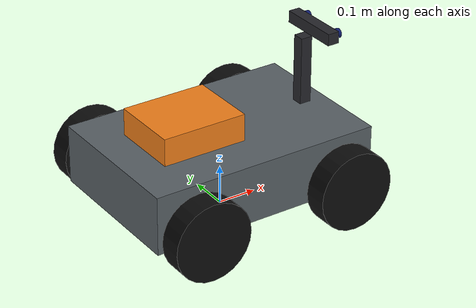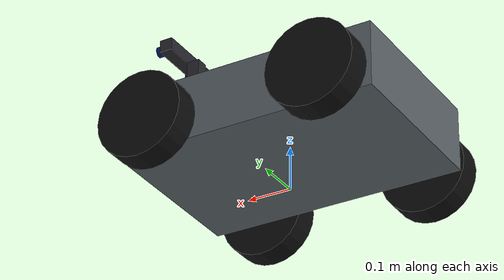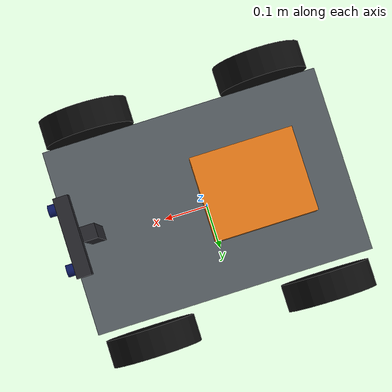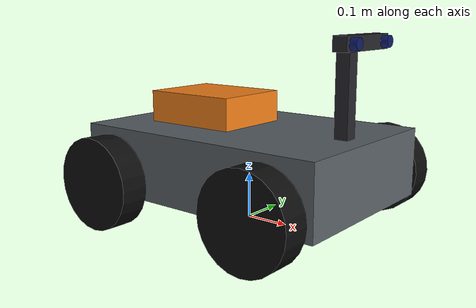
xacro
<?xml version="1.0"?>
<robot name="visionnav" xmlns:xacro="http://www.ros.org/wiki/xacro">

  <!-- ===================== CONFIGURABLE ARGUMENTS ===================== -->
  <!-- Chassis -->
  <xacro:arg name="chassis_length" default="0.60"/>
  <xacro:arg name="chassis_width" default="0.40"/>
  <xacro:arg name="chassis_height" default="0.15"/>
  <xacro:arg name="chassis_mass" default="12.0"/>
  <xacro:arg name="ground_clearance" default="0.06"/>
  <!-- Wheels -->
  <xacro:arg name="wheel_radius" default="0.10"/>
  <xacro:arg name="wheel_width" default="0.06"/>
  <xacro:arg name="wheel_mass" default="1.2"/>
  <xacro:arg name="track_width" default="0.50"/>   <!-- left-right wheel centre distance -->
  <xacro:arg name="wheel_base" default="0.40"/>    <!-- front-rear wheel centre distance -->
  <!-- Stereo camera -->
  <xacro:arg name="camera_baseline" default="0.12"/>
  <xacro:arg name="camera_x" default="0.27"/>      <!-- from base_link, forward -->
  <xacro:arg name="camera_z" default="0.30"/>      <!-- from base_link (axle height), up; must clear chassis top -->
  <xacro:arg name="camera_width" default="640"/>
  <xacro:arg name="camera_height" default="480"/>
  <xacro:arg name="camera_hfov" default="1.3963"/> <!-- 80 deg -->
  <xacro:arg name="camera_fps" default="30"/>
  <xacro:arg name="publish_odom_tf" default="true"/>

  <xacro:property name="chassis_length" value="$(arg chassis_length)"/>
  <xacro:property name="chassis_width" value="$(arg chassis_width)"/>
  <xacro:property name="chassis_height" value="$(arg chassis_height)"/>
  <xacro:property name="chassis_mass" value="$(arg chassis_mass)"/>
  <xacro:property name="ground_clearance" value="$(arg ground_clearance)"/>
  <xacro:property name="wheel_radius" value="$(arg wheel_radius)"/>
  <xacro:property name="wheel_width" value="$(arg wheel_width)"/>
  <xacro:property name="wheel_mass" value="$(arg wheel_mass)"/>
  <xacro:property name="track_width" value="$(arg track_width)"/>
  <xacro:property name="wheel_base" value="$(arg wheel_base)"/>
  <xacro:property name="camera_baseline" value="$(arg camera_baseline)"/>
  <xacro:property name="camera_x" value="$(arg camera_x)"/>
  <xacro:property name="camera_z" value="$(arg camera_z)"/>
  <xacro:property name="camera_width" value="$(arg camera_width)"/>
  <xacro:property name="camera_height" value="$(arg camera_height)"/>
  <xacro:property name="camera_hfov" value="$(arg camera_hfov)"/>
  <xacro:property name="camera_fps" value="$(arg camera_fps)"/>
  <xacro:property name="publish_odom_tf" value="$(arg publish_odom_tf)"/>

  <!-- ===================== DERIVED VALUES ===================== -->
  <!-- base_link sits at the wheel axle height; base_footprint is on the ground. -->
  <xacro:property name="chassis_z" value="${ground_clearance + chassis_height/2 - wheel_radius}"/>
  <xacro:property name="chassis_top_z" value="${chassis_z + chassis_height/2}"/>

  <!-- Electronics enclosure (compact box on top of chassis, rear half) -->
  <xacro:property name="enc_x" value="-0.10"/>
  <xacro:property name="enc_l" value="0.22"/>
  <xacro:property name="enc_w" value="0.18"/>
  <xacro:property name="enc_h" value="0.07"/>

  <!-- Sensor bracket (vertical post) + camera bar -->
  <xacro:property name="cam_bar_depth" value="0.03"/>
  <xacro:property name="cam_bar_height" value="0.03"/>
  <xacro:property name="cam_bar_width" value="${camera_baseline + 0.04}"/>
  <xacro:property name="post_size" value="0.03"/>
  <xacro:property name="post_h" value="${camera_z - cam_bar_height/2 - chassis_top_z}"/>
  <xacro:property name="post_x" value="${camera_x - cam_bar_depth/2 - post_size/2}"/>
  <xacro:property name="camera_mass" value="0.30"/>

  <xacro:property name="max_wheel_torque" value="20.0"/>
  <xacro:property name="max_wheel_speed" value="30.0"/> <!-- rad/s -->

  <!-- ===================== MATERIALS ===================== -->
  <material name="chassis_grey"><color rgba="0.35 0.38 0.40 1.0"/></material>
  <material name="enclosure_orange"><color rgba="0.95 0.50 0.10 1.0"/></material>
  <material name="bracket_dark"><color rgba="0.15 0.15 0.17 1.0"/></material>
  <material name="wheel_black"><color rgba="0.05 0.05 0.05 1.0"/></material>
  <material name="lens_blue"><color rgba="0.05 0.10 0.40 1.0"/></material>

  <!-- ===================== INERTIA MACROS ===================== -->
  <xacro:macro name="box_inertia" params="m x y z">
    <inertia ixx="${m*(y*y + z*z)/12.0}" ixy="0" ixz="0"
             iyy="${m*(x*x + z*z)/12.0}" iyz="0"
             izz="${m*(x*x + y*y)/12.0}"/>
  </xacro:macro>

  <!-- ===================== BASE ===================== -->
  <link name="base_footprint"/>

  <joint name="base_footprint_joint" type="fixed">
    <parent link="base_footprint"/>
    <child link="base_link"/>
    <origin xyz="0 0 ${wheel_radius}" rpy="0 0 0"/>
  </joint>

  <link name="base_link">
    <!-- Main chassis -->
    <visual>
      <origin xyz="0 0 ${chassis_z}" rpy="0 0 0"/>
      <geometry><box size="${chassis_length} ${chassis_width} ${chassis_height}"/></geometry>
      <material name="chassis_grey"/>
    </visual>
    <collision>
      <origin xyz="0 0 ${chassis_z}" rpy="0 0 0"/>
      <geometry><box size="${chassis_length} ${chassis_width} ${chassis_height}"/></geometry>
    </collision>

    <!-- Electronics enclosure -->
    <visual>
      <origin xyz="${enc_x} 0 ${chassis_top_z + enc_h/2}" rpy="0 0 0"/>
      <geometry><box size="${enc_l} ${enc_w} ${enc_h}"/></geometry>
      <material name="enclosure_orange"/>
    </visual>
    <collision>
      <origin xyz="${enc_x} 0 ${chassis_top_z + enc_h/2}" rpy="0 0 0"/>
      <geometry><box size="${enc_l} ${enc_w} ${enc_h}"/></geometry>
    </collision>

    <!-- Rigid sensor bracket (vertical post) -->
    <visual>
      <origin xyz="${post_x} 0 ${chassis_top_z + post_h/2}" rpy="0 0 0"/>
      <geometry><box size="${post_size} ${post_size} ${post_h}"/></geometry>
      <material name="bracket_dark"/>
    </visual>
    <collision>
      <origin xyz="${post_x} 0 ${chassis_top_z + post_h/2}" rpy="0 0 0"/>
      <geometry><box size="${post_size} ${post_size} ${post_h}"/></geometry>
    </collision>

    <!-- Lumped mass of chassis + enclosure + bracket, approximated as the chassis box -->
    <inertial>
      <origin xyz="0 0 ${chassis_z}" rpy="0 0 0"/>
      <mass value="${chassis_mass}"/>
      <xacro:box_inertia m="${chassis_mass}" x="${chassis_length}" y="${chassis_width}" z="${chassis_height}"/>
    </inertial>
  </link>

  <!-- ===================== WHEELS ===================== -->
  <xacro:macro name="wheel" params="name x y">
    <link name="${name}_wheel_link">
      <visual>
        <origin xyz="0 0 0" rpy="${pi/2} 0 0"/>
        <geometry><cylinder radius="${wheel_radius}" length="${wheel_width}"/></geometry>
        <material name="wheel_black"/>
      </visual>
      <collision>
        <origin xyz="0 0 0" rpy="${pi/2} 0 0"/>
        <geometry><cylinder radius="${wheel_radius}" length="${wheel_width}"/></geometry>
      </collision>
      <inertial>
        <origin xyz="0 0 0" rpy="0 0 0"/>
        <mass value="${wheel_mass}"/>
        <!-- Solid cylinder with its symmetry axis along Y -->
        <inertia ixx="${wheel_mass*(3*wheel_radius*wheel_radius + wheel_width*wheel_width)/12.0}" ixy="0" ixz="0"
                 iyy="${wheel_mass*wheel_radius*wheel_radius/2.0}" iyz="0"
                 izz="${wheel_mass*(3*wheel_radius*wheel_radius + wheel_width*wheel_width)/12.0}"/>
      </inertial>
    </link>

    <joint name="${name}_wheel_joint" type="continuous">
      <parent link="base_link"/>
      <child link="${name}_wheel_link"/>
      <origin xyz="${x} ${y} 0" rpy="0 0 0"/>
      <axis xyz="0 1 0"/>
      <limit effort="${max_wheel_torque}" velocity="${max_wheel_speed}"/>
      <dynamics damping="0.05" friction="0.02"/>
    </joint>

    <!-- Skid-steer contact: high grip rolling direction (mu1 along fdir1 = X),
         reduced lateral grip (mu2) so the robot can slip sideways when turning in place. -->
    <gazebo reference="${name}_wheel_link">
      <mu1>1.0</mu1>
      <mu2>0.6</mu2>
      <fdir1>1 0 0</fdir1>
      <kp>1000000.0</kp>
      <kd>100.0</kd>
      <minDepth>0.001</minDepth>
      <maxVel>0.1</maxVel>
      <material>Gazebo/Black</material>
    </gazebo>
  </xacro:macro>

  <xacro:wheel name="front_left"  x="${ wheel_base/2}" y="${ track_width/2}"/>
  <xacro:wheel name="front_right" x="${ wheel_base/2}" y="${-track_width/2}"/>
  <xacro:wheel name="rear_left"   x="${-wheel_base/2}" y="${ track_width/2}"/>
  <xacro:wheel name="rear_right"  x="${-wheel_base/2}" y="${-track_width/2}"/>

  <!-- Low-friction chassis so it never drags if it touches the ground -->
  <gazebo reference="base_link">
    <mu1>0.05</mu1>
    <mu2>0.05</mu2>
    <material>Gazebo/Grey</material>
  </gazebo>

  <!-- ===================== STEREO CAMERA ASSEMBLY ===================== -->
  <link name="stereo_camera_link">
    <visual>
      <origin xyz="0 0 0" rpy="0 0 0"/>
      <geometry><box size="${cam_bar_depth} ${cam_bar_width} ${cam_bar_height}"/></geometry>
      <material name="bracket_dark"/>
    </visual>
    <collision>
      <origin xyz="0 0 0" rpy="0 0 0"/>
      <geometry><box size="${cam_bar_depth} ${cam_bar_width} ${cam_bar_height}"/></geometry>
    </collision>
    <inertial>
      <origin xyz="0 0 0" rpy="0 0 0"/>
      <mass value="${camera_mass}"/>
      <xacro:box_inertia m="${camera_mass}" x="${cam_bar_depth}" y="${cam_bar_width}" z="${cam_bar_height}"/>
    </inertial>
  </link>

  <joint name="stereo_camera_joint" type="fixed">
    <parent link="base_link"/>
    <child link="stereo_camera_link"/>
    <origin xyz="${camera_x} 0 ${camera_z}" rpy="0 0 0"/>
  </joint>

  <!-- Camera body frame (x fwd, y left, z up) + optical frame (z fwd, x right, y down)
       Optical rotation relative to body frame: rpy = (-pi/2, 0, -pi/2). -->
  <xacro:macro name="stereo_side" params="side y_sign">
    <link name="${side}_camera_frame">
      <!-- Lens barrel (visual only) -->
      <visual>
        <origin xyz="${cam_bar_depth/2 + 0.0075} 0 0" rpy="0 ${pi/2} 0"/>
        <geometry><cylinder radius="0.012" length="0.015"/></geometry>
        <material name="lens_blue"/>
      </visual>
    </link>

    <joint name="${side}_camera_joint" type="fixed">
      <parent link="stereo_camera_link"/>
      <child link="${side}_camera_frame"/>
      <origin xyz="0 ${y_sign * camera_baseline/2} 0" rpy="0 0 0"/>
    </joint>

    <link name="${side}_camera_optical_frame"/>

    <joint name="${side}_camera_optical_joint" type="fixed">
      <parent link="${side}_camera_frame"/>
      <child link="${side}_camera_optical_frame"/>
      <origin xyz="0 0 0" rpy="${-pi/2} 0 ${-pi/2}"/>
    </joint>
  </xacro:macro>

  <xacro:stereo_side side="left"  y_sign="1"/>
  <xacro:stereo_side side="right" y_sign="-1"/>

  <!-- Gazebo Classic camera sensors. Sensors look along +X of the camera body frame, which is
       the optical +Z axis, so the image is published with the optical frame_name. -->
  <xacro:macro name="stereo_sensor" params="side baseline_hack">
    <gazebo reference="${side}_camera_frame">
      <sensor name="stereo_${side}" type="camera">
        <always_on>true</always_on>
        <visualize>false</visualize>
        <update_rate>${camera_fps}</update_rate>
        <camera name="${side}">
          <horizontal_fov>${camera_hfov}</horizontal_fov>
          <image>
            <width>${camera_width}</width>
            <height>${camera_height}</height>
            <format>R8G8B8</format>
          </image>
          <clip>
            <near>0.1</near>
            <far>50.0</far>
          </clip>
          <noise>
            <type>gaussian</type>
            <mean>0.0</mean>
            <stddev>0.007</stddev>
          </noise>
        </camera>
        <plugin name="stereo_${side}_plugin" filename="libgazebo_ros_camera.so">
          <ros>
            <namespace>stereo_camera</namespace>
          </ros>
          <camera_name>${side}</camera_name>
          <frame_name>${side}_camera_optical_frame</frame_name>
          <!-- Right camera_info P[0,3] = -fx * baseline, as expected by stereo_image_proc -->
          <hack_baseline>${baseline_hack}</hack_baseline>
        </plugin>
      </sensor>
    </gazebo>
  </xacro:macro>

  <!-- Topics: /stereo_camera/left/image_raw, /stereo_camera/left/camera_info,
               /stereo_camera/right/image_raw, /stereo_camera/right/camera_info -->
  <xacro:stereo_sensor side="left"  baseline_hack="0.0"/>
  <xacro:stereo_sensor side="right" baseline_hack="${camera_baseline}"/>

  <!-- ===================== IMU (mounted on the stereo camera bracket) ===================== -->
  <gazebo reference="stereo_camera_link">
    <sensor name="imu_sensor" type="imu">
      <always_on>true</always_on>
      <update_rate>200</update_rate>
      <visualize>false</visualize>
      <imu>
        <angular_velocity>
          <x><noise type="gaussian"><mean>0.0</mean><stddev>0.0005</stddev></noise></x>
          <y><noise type="gaussian"><mean>0.0</mean><stddev>0.0005</stddev></noise></y>
          <z><noise type="gaussian"><mean>0.0</mean><stddev>0.0005</stddev></noise></z>
        </angular_velocity>
        <linear_acceleration>
          <x><noise type="gaussian"><mean>0.0</mean><stddev>0.02</stddev></noise></x>
          <y><noise type="gaussian"><mean>0.0</mean><stddev>0.02</stddev></noise></y>
          <z><noise type="gaussian"><mean>0.0</mean><stddev>0.02</stddev></noise></z>
        </linear_acceleration>
      </imu>
      <plugin name="imu_plugin" filename="libgazebo_ros_imu_sensor.so">
        <ros>
          <namespace>/camera</namespace>
          <remapping>~/out:=imu</remapping>
        </ros>
        <frame_name>stereo_camera_link</frame_name>
        <initial_orientation_as_reference>false</initial_orientation_as_reference>
      </plugin>
    </sensor>
  </gazebo>

  <!-- ===================== GAZEBO PLUGINS ===================== -->
  <gazebo>
    <plugin name="skid_steer_drive" filename="libgazebo_ros_diff_drive.so">
      <update_rate>50</update_rate>
      <num_wheel_pairs>2</num_wheel_pairs>

      <left_joint>front_left_wheel_joint</left_joint>
      <right_joint>front_right_wheel_joint</right_joint>
      <left_joint>rear_left_wheel_joint</left_joint>
      <right_joint>rear_right_wheel_joint</right_joint>

      <wheel_separation>${track_width}</wheel_separation>
      <wheel_separation>${track_width}</wheel_separation>
      <wheel_diameter>${2*wheel_radius}</wheel_diameter>
      <wheel_diameter>${2*wheel_radius}</wheel_diameter>

      <max_wheel_torque>${max_wheel_torque}</max_wheel_torque>
      <max_wheel_acceleration>4.0</max_wheel_acceleration>

      <command_topic>cmd_vel</command_topic>
      <publish_odom>true</publish_odom>
      <!-- Phase 0/1: plugin publishes odom -> base_footprint. From Phase 2 the EKF owns it
           (launch with publish_odom_tf:=false). Never both. -->
      <publish_odom_tf>${'true' if publish_odom_tf else 'false'}</publish_odom_tf>
      <publish_wheel_tf>false</publish_wheel_tf>
      <odometry_topic>odom</odometry_topic>
      <odometry_frame>odom</odometry_frame>
      <robot_base_frame>base_footprint</robot_base_frame>
      <odometry_source>1</odometry_source>
    </plugin>

    <!-- Publishes /joint_states for the four wheel joints so robot_state_publisher can
         produce the base_link -> wheel_link transforms. -->
    <plugin name="wheel_joint_state_publisher" filename="libgazebo_ros_joint_state_publisher.so">
      <update_rate>50</update_rate>
      <joint_name>front_left_wheel_joint</joint_name>
      <joint_name>front_right_wheel_joint</joint_name>
      <joint_name>rear_left_wheel_joint</joint_name>
      <joint_name>rear_right_wheel_joint</joint_name>
    </plugin>

    <plugin name="ground_truth_odom" filename="libgazebo_ros_p3d.so">
      <ros>
        <namespace>/ground_truth</namespace>
      </ros>
      <body_name>base_footprint</body_name>
      <frame_name>world</frame_name>
      <update_rate>50.0</update_rate>
      <gaussian_noise>0.0</gaussian_noise>
    </plugin>
  </gazebo>

</robot>
